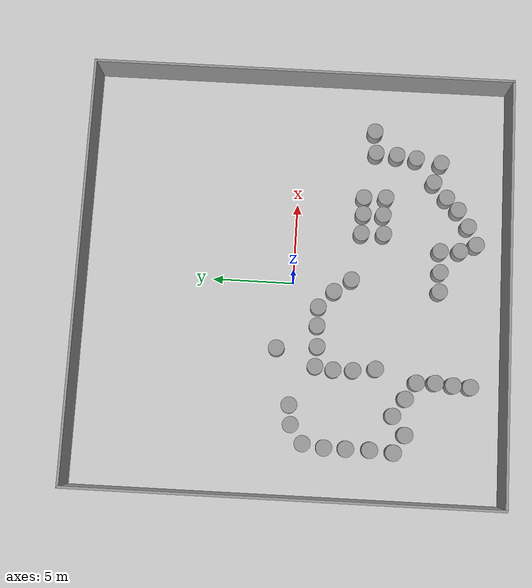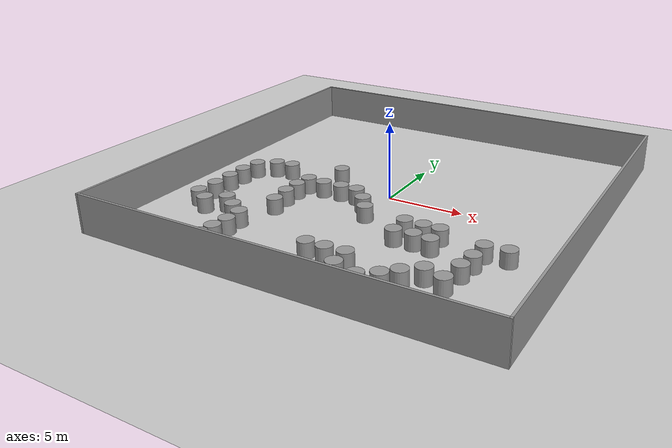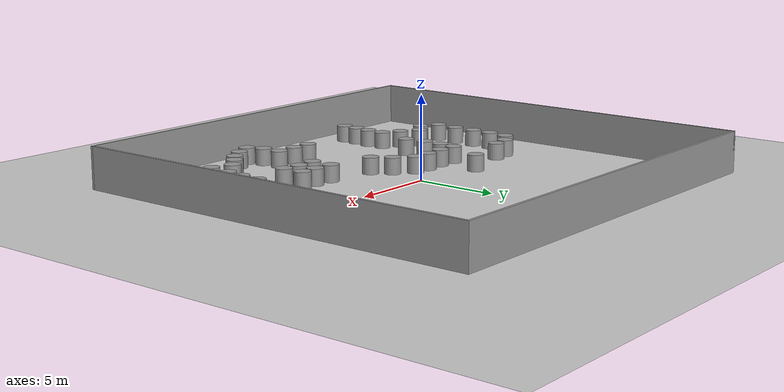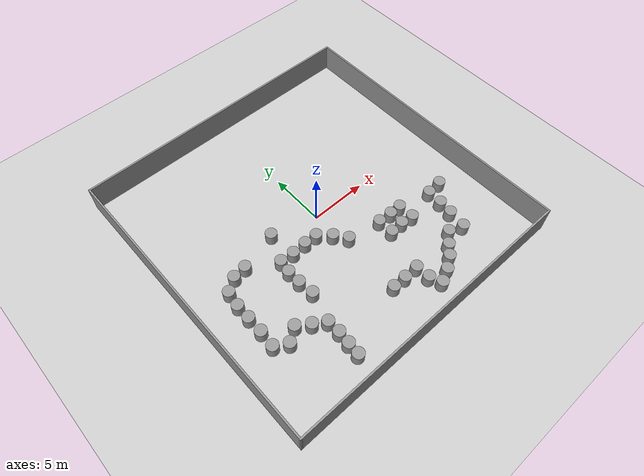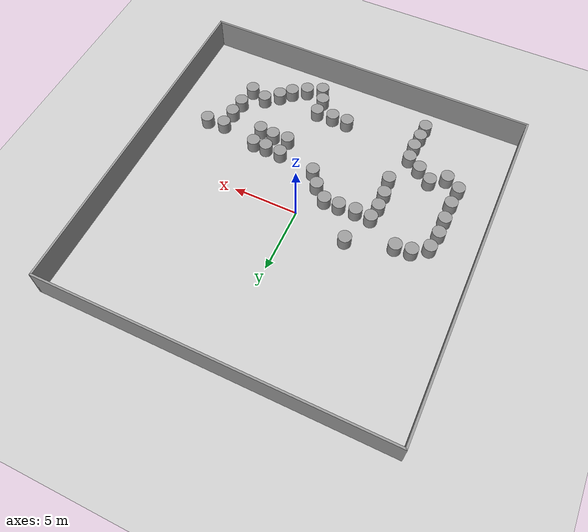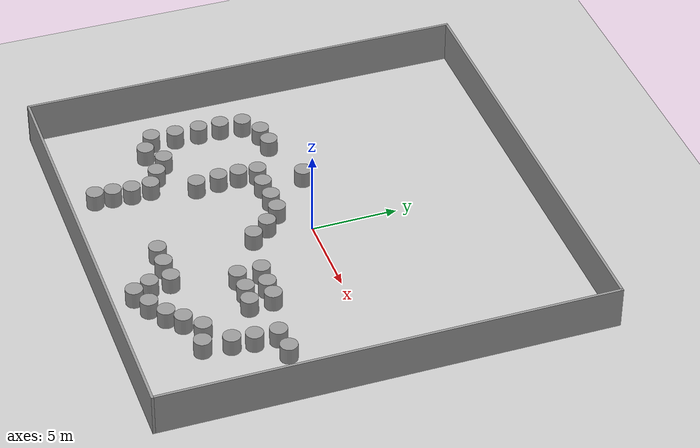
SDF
<sdf version="1.6">
 <world name="default">
  <model name="ground_plane">
   <static>1</static>
   <link name="link">
    <collision name="collision">
     <geometry><plane><normal>0 0 1</normal><size>100 100</size></plane></geometry>
     <surface><friction><ode><mu>100</mu><mu2>50</mu2></ode></friction></surface>
    </collision>
    <visual name="visual">
     <cast_shadows>0</cast_shadows>
     <geometry><plane><normal>0 0 1</normal><size>100 100</size></plane></geometry>
     <material>
      <script><uri>file://media/materials/scripts/gazebo.material</uri><name>Gazebo/Grey</name></script>
     </material>
    </visual>
   </link>
  </model>
  <model name="pp_test_2">
   <link name="Wall_0">
    <collision name="Wall_0_Collision">
     <geometry><box><size>26.15 0.15 2.5</size></box></geometry>
     <pose>0 0 1.25 0 -0 0</pose>
    </collision>
    <visual name="Wall_0_Visual">
     <pose>0 0 1.25 0 -0 0</pose>
     <geometry><box><size>26.15 0.15 2.5</size></box></geometry>
     <material>
      <script><uri>file://media/materials/scripts/gazebo.material</uri><name>Gazebo/Grey</name></script>
      <ambient>1 1 1 1</ambient>
     </material>
    </visual>
    <pose>0 13 0 0 -0 0</pose>
   </link>
   <link name="Wall_2">
    <collision name="Wall_2_Collision">
     <geometry><box><size>26.15 0.15 2.5</size></box></geometry>
     <pose>0 0 1.25 0 -0 0</pose>
    </collision>
    <visual name="Wall_2_Visual">
     <pose>0 0 1.25 0 -0 0</pose>
     <geometry><box><size>26.15 0.15 2.5</size></box></geometry>
     <material>
      <script><uri>file://media/materials/scripts/gazebo.material</uri><name>Gazebo/Grey</name></script>
      <ambient>1 1 1 1</ambient>
     </material>
    </visual>
    <pose>13 0 0 0 0 -1.5708</pose>
   </link>
   <link name="Wall_4">
    <collision name="Wall_4_Collision">
     <geometry><box><size>26.15 0.15 2.5</size></box></geometry>
     <pose>0 0 1.25 0 -0 0</pose>
    </collision>
    <visual name="Wall_4_Visual">
     <pose>0 0 1.25 0 -0 0</pose>
     <geometry><box><size>26.15 0.15 2.5</size></box></geometry>
     <material>
      <script><uri>file://media/materials/scripts/gazebo.material</uri><name>Gazebo/Grey</name></script>
      <ambient>1 1 1 1</ambient>
     </material>
    </visual>
    <pose>0 -13 0 0 -0 3.14159</pose>
   </link>
   <link name="Wall_6">
    <collision name="Wall_6_Collision">
     <geometry><box><size>26.15 0.15 2.5</size></box></geometry>
     <pose>0 0 1.25 0 -0 0</pose>
    </collision>
    <visual name="Wall_6_Visual">
     <pose>0 0 1.25 0 -0 0</pose>
     <geometry><box><size>26.15 0.15 2.5</size></box></geometry>
     <material>
      <script><uri>file://media/materials/scripts/gazebo.material</uri><name>Gazebo/Grey</name></script>
      <ambient>1 1 1 1</ambient>
     </material>
    </visual>
    <pose>-13 0 0 0 -0 1.5708</pose>
   </link>
   <static>1</static>
  </model>
  <model name="unit_cylinder_3_clone_5">
   <pose>-4.14131 0.836526 0.499996 2e-06 1e-06 0</pose>
   <link name="link">
    <inertial>
     <mass>1</mass>
     <inertia><ixx>0.145833</ixx><ixy>0</ixy><ixz>0</ixz><iyy>0.145833</iyy><iyz>0</iyz><izz>0.125</izz></inertia>
    </inertial>
    <collision name="collision">
     <geometry><cylinder><radius>0.5</radius><length>1</length></cylinder></geometry>
    </collision>
    <visual name="visual">
     <geometry><cylinder><radius>0.5</radius><length>1</length></cylinder></geometry>
     <material>
      <script><name>Gazebo/Grey</name><uri>file://media/materials/scripts/gazebo.material</uri></script>
     </material>
    </visual>
   </link>
  </model>
  <model name="unit_cylinder_3_clone_8">
   <pose>-1.49686 -1.59938 0.499994 -2e-06 -1e-06 0</pose>
   <link name="link">
    <inertial>
     <mass>1</mass>
     <inertia><ixx>0.145833</ixx><ixy>0</ixy><ixz>0</ixz><iyy>0.145833</iyy><iyz>0</iyz><izz>0.125</izz></inertia>
    </inertial>
    <collision name="collision">
     <geometry><cylinder><radius>0.5</radius><length>1</length></cylinder></geometry>
    </collision>
    <visual name="visual">
     <geometry><cylinder><radius>0.5</radius><length>1</length></cylinder></geometry>
     <material>
      <script><name>Gazebo/Grey</name><uri>file://media/materials/scripts/gazebo.material</uri></script>
     </material>
    </visual>
   </link>
  </model>
  <model name="unit_cylinder_3_clone_9">
   <pose>-2.65788 -1.58084 0.499996 2e-06 1e-06 0</pose>
   <link name="link">
    <inertial>
     <mass>1</mass>
     <inertia><ixx>0.145833</ixx><ixy>0</ixy><ixz>0</ixz><iyy>0.145833</iyy><iyz>0</iyz><izz>0.125</izz></inertia>
    </inertial>
    <collision name="collision">
     <geometry><cylinder><radius>0.5</radius><length>1</length></cylinder></geometry>
    </collision>
    <visual name="visual">
     <geometry><cylinder><radius>0.5</radius><length>1</length></cylinder></geometry>
     <material>
      <script><name>Gazebo/Grey</name><uri>file://media/materials/scripts/gazebo.material</uri></script>
     </material>
    </visual>
   </link>
  </model>
  <model name="unit_cylinder_3_clone_10">
   <pose>-3.93267 -1.65023 0.499994 -2e-06 -1e-06 0</pose>
   <link name="link">
    <inertial>
     <mass>1</mass>
     <inertia><ixx>0.145833</ixx><ixy>0</ixy><ixz>0</ixz><iyy>0.145833</iyy><iyz>0</iyz><izz>0.125</izz></inertia>
    </inertial>
    <collision name="collision">
     <geometry><cylinder><radius>0.5</radius><length>1</length></cylinder></geometry>
    </collision>
    <visual name="visual">
     <geometry><cylinder><radius>0.5</radius><length>1</length></cylinder></geometry>
     <material>
      <script><name>Gazebo/Grey</name><uri>file://media/materials/scripts/gazebo.material</uri></script>
     </material>
    </visual>
   </link>
  </model>
  <model name="unit_cylinder_3_clone_11">
   <pose>-5.14336 -1.57667 0.499996 3e-06 1e-06 -0</pose>
   <link name="link">
    <inertial>
     <mass>1</mass>
     <inertia><ixx>0.145833</ixx><ixy>0</ixy><ixz>0</ixz><iyy>0.145833</iyy><iyz>0</iyz><izz>0.125</izz></inertia>
    </inertial>
    <collision name="collision">
     <geometry><cylinder><radius>0.5</radius><length>1</length></cylinder></geometry>
    </collision>
    <visual name="visual">
     <geometry><cylinder><radius>0.5</radius><length>1</length></cylinder></geometry>
     <material>
      <script><name>Gazebo/Grey</name><uri>file://media/materials/scripts/gazebo.material</uri></script>
     </material>
    </visual>
   </link>
  </model>
  <model name="unit_cylinder_3_clone_12">
   <pose>-5.289 -2.68054 0.499994 -3e-06 -1e-06 -0</pose>
   <link name="link">
    <inertial>
     <mass>1</mass>
     <inertia><ixx>0.145833</ixx><ixy>0</ixy><ixz>0</ixz><iyy>0.145833</iyy><iyz>0</iyz><izz>0.125</izz></inertia>
    </inertial>
    <collision name="collision">
     <geometry><cylinder><radius>0.5</radius><length>1</length></cylinder></geometry>
    </collision>
    <visual name="visual">
     <geometry><cylinder><radius>0.5</radius><length>1</length></cylinder></geometry>
     <material>
      <script><name>Gazebo/Grey</name><uri>file://media/materials/scripts/gazebo.material</uri></script>
     </material>
    </visual>
   </link>
  </model>
  <model name="unit_cylinder_3_clone_13">
   <pose>-5.26765 -3.88171 0.499996 3e-06 1e-06 -0</pose>
   <link name="link">
    <inertial>
     <mass>1</mass>
     <inertia><ixx>0.145833</ixx><ixy>0</ixy><ixz>0</ixz><iyy>0.145833</iyy><iyz>0</iyz><izz>0.125</izz></inertia>
    </inertial>
    <collision name="collision">
     <geometry><cylinder><radius>0.5</radius><length>1</length></cylinder></geometry>
    </collision>
    <visual name="visual">
     <geometry><cylinder><radius>0.5</radius><length>1</length></cylinder></geometry>
     <material>
      <script><name>Gazebo/Grey</name><uri>file://media/materials/scripts/gazebo.material</uri></script>
     </material>
    </visual>
   </link>
  </model>
  <model name="unit_cylinder_3_clone_14">
   <pose>-5.10953 -5.24772 0.499994 -3e-06 -1e-06 -0</pose>
   <link name="link">
    <inertial>
     <mass>1</mass>
     <inertia><ixx>0.145833</ixx><ixy>0</ixy><ixz>0</ixz><iyy>0.145833</iyy><iyz>0</iyz><izz>0.125</izz></inertia>
    </inertial>
    <collision name="collision">
     <geometry><cylinder><radius>0.5</radius><length>1</length></cylinder></geometry>
    </collision>
    <visual name="visual">
     <geometry><cylinder><radius>0.5</radius><length>1</length></cylinder></geometry>
     <material>
      <script><name>Gazebo/Grey</name><uri>file://media/materials/scripts/gazebo.material</uri></script>
     </material>
    </visual>
   </link>
  </model>
  <model name="unit_cylinder_3_clone_15">
   <pose>-0.485963 -2.51006 0.499996 3e-06 1e-06 -0</pose>
   <link name="link">
    <inertial>
     <mass>1</mass>
     <inertia><ixx>0.145833</ixx><ixy>0</ixy><ixz>0</ixz><iyy>0.145833</iyy><iyz>0</iyz><izz>0.125</izz></inertia>
    </inertial>
    <collision name="collision">
     <geometry><cylinder><radius>0.5</radius><length>1</length></cylinder></geometry>
    </collision>
    <visual name="visual">
     <geometry><cylinder><radius>0.5</radius><length>1</length></cylinder></geometry>
     <material>
      <script><name>Gazebo/Grey</name><uri>file://media/materials/scripts/gazebo.material</uri></script>
     </material>
    </visual>
   </link>
  </model>
  <model name="unit_cylinder_3_clone_16">
   <pose>0.297227 -3.55585 0.499994 -3e-06 -1e-06 -0</pose>
   <link name="link">
    <inertial>
     <mass>1</mass>
     <inertia><ixx>0.145833</ixx><ixy>0</ixy><ixz>0</ixz><iyy>0.145833</iyy><iyz>0</iyz><izz>0.125</izz></inertia>
    </inertial>
    <collision name="collision">
     <geometry><cylinder><radius>0.5</radius><length>1</length></cylinder></geometry>
    </collision>
    <visual name="visual">
     <geometry><cylinder><radius>0.5</radius><length>1</length></cylinder></geometry>
     <material>
      <script><name>Gazebo/Grey</name><uri>file://media/materials/scripts/gazebo.material</uri></script>
     </material>
    </visual>
   </link>
  </model>
  <model name="unit_cylinder_3_clone_45">
   <pose>-9.79398 -1.03139 0.499997 3e-06 2e-06 0</pose>
   <link name="link">
    <inertial>
     <mass>1</mass>
     <inertia><ixx>0.145833</ixx><ixy>0</ixy><ixz>0</ixz><iyy>0.145833</iyy><iyz>0</iyz><izz>0.125</izz></inertia>
    </inertial>
    <collision name="collision">
     <geometry><cylinder><radius>0.5</radius><length>1</length></cylinder></geometry>
    </collision>
    <visual name="visual">
     <geometry><cylinder><radius>0.5</radius><length>1</length></cylinder></geometry>
     <material>
      <script><name>Gazebo/Grey</name><uri>file://media/materials/scripts/gazebo.material</uri></script>
     </material>
    </visual>
   </link>
  </model>
  <model name="unit_cylinder_3_clone_46">
   <pose>-8.70421 -0.26571 0.499997 3e-06 2e-06 0</pose>
   <link name="link">
    <inertial>
     <mass>1</mass>
     <inertia><ixx>0.145833</ixx><ixy>0</ixy><ixz>0</ixz><iyy>0.145833</iyy><iyz>0</iyz><izz>0.125</izz></inertia>
    </inertial>
    <collision name="collision">
     <geometry><cylinder><radius>0.5</radius><length>1</length></cylinder></geometry>
    </collision>
    <visual name="visual">
     <geometry><cylinder><radius>0.5</radius><length>1</length></cylinder></geometry>
     <material>
      <script><name>Gazebo/Grey</name><uri>file://media/materials/scripts/gazebo.material</uri></script>
     </material>
    </visual>
   </link>
  </model>
  <model name="unit_cylinder_3_clone_47">
   <pose>-7.53872 -0.117283 0.499994 -3e-06 -2e-06 0</pose>
   <link name="link">
    <inertial>
     <mass>1</mass>
     <inertia><ixx>0.145833</ixx><ixy>0</ixy><ixz>0</ixz><iyy>0.145833</iyy><iyz>0</iyz><izz>0.125</izz></inertia>
    </inertial>
    <collision name="collision">
     <geometry><cylinder><radius>0.5</radius><length>1</length></cylinder></geometry>
    </collision>
    <visual name="visual">
     <geometry><cylinder><radius>0.5</radius><length>1</length></cylinder></geometry>
     <material>
      <script><name>Gazebo/Grey</name><uri>file://media/materials/scripts/gazebo.material</uri></script>
     </material>
    </visual>
   </link>
  </model>
  <model name="unit_cylinder_3_clone_48">
   <pose>-9.97561 -2.34091 0.499997 3e-06 2e-06 0</pose>
   <link name="link">
    <inertial>
     <mass>1</mass>
     <inertia><ixx>0.145833</ixx><ixy>0</ixy><ixz>0</ixz><iyy>0.145833</iyy><iyz>0</iyz><izz>0.125</izz></inertia>
    </inertial>
    <collision name="collision">
     <geometry><cylinder><radius>0.5</radius><length>1</length></cylinder></geometry>
    </collision>
    <visual name="visual">
     <geometry><cylinder><radius>0.5</radius><length>1</length></cylinder></geometry>
     <material>
      <script><name>Gazebo/Grey</name><uri>file://media/materials/scripts/gazebo.material</uri></script>
     </material>
    </visual>
   </link>
  </model>
  <model name="unit_cylinder_3_clone_49">
   <pose>-9.97675 -3.65167 0.499997 3e-06 2e-06 0</pose>
   <link name="link">
    <inertial>
     <mass>1</mass>
     <inertia><ixx>0.145833</ixx><ixy>0</ixy><ixz>0</ixz><iyy>0.145833</iyy><iyz>0</iyz><izz>0.125</izz></inertia>
    </inertial>
    <collision name="collision">
     <geometry><cylinder><radius>0.5</radius><length>1</length></cylinder></geometry>
    </collision>
    <visual name="visual">
     <geometry><cylinder><radius>0.5</radius><length>1</length></cylinder></geometry>
     <material>
      <script><name>Gazebo/Grey</name><uri>file://media/materials/scripts/gazebo.material</uri></script>
     </material>
    </visual>
   </link>
  </model>
  <model name="unit_cylinder_3_clone_50">
   <pose>-9.96936 -5.08345 0.499994 -3e-06 -2e-06 0</pose>
   <link name="link">
    <inertial>
     <mass>1</mass>
     <inertia><ixx>0.145833</ixx><ixy>0</ixy><ixz>0</ixz><iyy>0.145833</iyy><iyz>0</iyz><izz>0.125</izz></inertia>
    </inertial>
    <collision name="collision">
     <geometry><cylinder><radius>0.5</radius><length>1</length></cylinder></geometry>
    </collision>
    <visual name="visual">
     <geometry><cylinder><radius>0.5</radius><length>1</length></cylinder></geometry>
     <material>
      <script><name>Gazebo/Grey</name><uri>file://media/materials/scripts/gazebo.material</uri></script>
     </material>
    </visual>
   </link>
  </model>
  <model name="unit_cylinder_3_clone_51">
   <pose>-10.0565 -6.51119 0.499994 -3e-06 -2e-06 0</pose>
   <link name="link">
    <inertial>
     <mass>1</mass>
     <inertia><ixx>0.145833</ixx><ixy>0</ixy><ixz>0</ixz><iyy>0.145833</iyy><iyz>0</iyz><izz>0.125</izz></inertia>
    </inertial>
    <collision name="collision">
     <geometry><cylinder><radius>0.5</radius><length>1</length></cylinder></geometry>
    </collision>
    <visual name="visual">
     <geometry><cylinder><radius>0.5</radius><length>1</length></cylinder></geometry>
     <material>
      <script><name>Gazebo/Grey</name><uri>file://media/materials/scripts/gazebo.material</uri></script>
     </material>
    </visual>
   </link>
  </model>
  <model name="unit_cylinder_3_clone_52">
   <pose>-8.98197 -7.16233 0.499994 -3e-06 -2e-06 0</pose>
   <link name="link">
    <inertial>
     <mass>1</mass>
     <inertia><ixx>0.145833</ixx><ixy>0</ixy><ixz>0</ixz><iyy>0.145833</iyy><iyz>0</iyz><izz>0.125</izz></inertia>
    </inertial>
    <collision name="collision">
     <geometry><cylinder><radius>0.5</radius><length>1</length></cylinder></geometry>
    </collision>
    <visual name="visual">
     <geometry><cylinder><radius>0.5</radius><length>1</length></cylinder></geometry>
     <material>
      <script><name>Gazebo/Grey</name><uri>file://media/materials/scripts/gazebo.material</uri></script>
     </material>
    </visual>
   </link>
  </model>
  <model name="unit_cylinder_3_clone_53">
   <pose>-7.8784 -6.38546 0.499994 -3e-06 -2e-06 0</pose>
   <link name="link">
    <inertial>
     <mass>1</mass>
     <inertia><ixx>0.145833</ixx><ixy>0</ixy><ixz>0</ixz><iyy>0.145833</iyy><iyz>0</iyz><izz>0.125</izz></inertia>
    </inertial>
    <collision name="collision">
     <geometry><cylinder><radius>0.5</radius><length>1</length></cylinder></geometry>
    </collision>
    <visual name="visual">
     <geometry><cylinder><radius>0.5</radius><length>1</length></cylinder></geometry>
     <material>
      <script><name>Gazebo/Grey</name><uri>file://media/materials/scripts/gazebo.material</uri></script>
     </material>
    </visual>
   </link>
  </model>
  <model name="unit_cylinder_3_clone_54">
   <pose>-6.82397 -7.11164 0.499991 -2e-06 -2e-06 0</pose>
   <link name="link">
    <inertial>
     <mass>1</mass>
     <inertia><ixx>0.145833</ixx><ixy>0</ixy><ixz>0</ixz><iyy>0.145833</iyy><iyz>0</iyz><izz>0.125</izz></inertia>
    </inertial>
    <collision name="collision">
     <geometry><cylinder><radius>0.5</radius><length>1</length></cylinder></geometry>
    </collision>
    <visual name="visual">
     <geometry><cylinder><radius>0.5</radius><length>1</length></cylinder></geometry>
     <material>
      <script><name>Gazebo/Grey</name><uri>file://media/materials/scripts/gazebo.material</uri></script>
     </material>
    </visual>
   </link>
  </model>
  <model name="unit_cylinder_3_clone_55">
   <pose>-5.81483 -7.75175 0.499997 4e-06 3e-06 -0</pose>
   <link name="link">
    <inertial>
     <mass>1</mass>
     <inertia><ixx>0.145833</ixx><ixy>0</ixy><ixz>0</ixz><iyy>0.145833</iyy><iyz>0</iyz><izz>0.125</izz></inertia>
    </inertial>
    <collision name="collision">
     <geometry><cylinder><radius>0.5</radius><length>1</length></cylinder></geometry>
    </collision>
    <visual name="visual">
     <geometry><cylinder><radius>0.5</radius><length>1</length></cylinder></geometry>
     <material>
      <script><name>Gazebo/Grey</name><uri>file://media/materials/scripts/gazebo.material</uri></script>
     </material>
    </visual>
   </link>
  </model>
  <model name="unit_cylinder_3_clone_56">
   <pose>-5.77116 -8.8891 0.499994 -4e-06 -4e-06 -0</pose>
   <link name="link">
    <inertial>
     <mass>1</mass>
     <inertia><ixx>0.145833</ixx><ixy>0</ixy><ixz>0</ixz><iyy>0.145833</iyy><iyz>0</iyz><izz>0.125</izz></inertia>
    </inertial>
    <collision name="collision">
     <geometry><cylinder><radius>0.5</radius><length>1</length></cylinder></geometry>
    </collision>
    <visual name="visual">
     <geometry><cylinder><radius>0.5</radius><length>1</length></cylinder></geometry>
     <material>
      <script><name>Gazebo/Grey</name><uri>file://media/materials/scripts/gazebo.material</uri></script>
     </material>
    </visual>
   </link>
  </model>
  <model name="unit_cylinder_3_clone_57">
   <pose>-5.86231 -9.9733 0.499996 2e-06 -0 0</pose>
   <link name="link">
    <inertial>
     <mass>1</mass>
     <inertia><ixx>0.145833</ixx><ixy>0</ixy><ixz>0</ixz><iyy>0.145833</iyy><iyz>0</iyz><izz>0.125</izz></inertia>
    </inertial>
    <collision name="collision">
     <geometry><cylinder><radius>0.5</radius><length>1</length></cylinder></geometry>
    </collision>
    <visual name="visual">
     <geometry><cylinder><radius>0.5</radius><length>1</length></cylinder></geometry>
     <material>
      <script><name>Gazebo/Grey</name><uri>file://media/materials/scripts/gazebo.material</uri></script>
     </material>
    </visual>
   </link>
  </model>
  <model name="unit_cylinder_3_clone_58">
   <pose>-5.9174 -11.0147 0.499998 3e-06 4e-06 -0</pose>
   <link name="link">
    <inertial>
     <mass>1</mass>
     <inertia><ixx>0.145833</ixx><ixy>0</ixy><ixz>0</ixz><iyy>0.145833</iyy><iyz>0</iyz><izz>0.125</izz></inertia>
    </inertial>
    <collision name="collision">
     <geometry><cylinder><radius>0.5</radius><length>1</length></cylinder></geometry>
    </collision>
    <visual name="visual">
     <geometry><cylinder><radius>0.5</radius><length>1</length></cylinder></geometry>
     <material>
      <script><name>Gazebo/Grey</name><uri>file://media/materials/scripts/gazebo.material</uri></script>
     </material>
    </visual>
   </link>
  </model>
  <model name="unit_cylinder_3_clone_66">
   <pose>3.24314 -4.04102 0.499992 -3e-06 2e-06 0</pose>
   <link name="link">
    <inertial>
     <mass>1</mass>
     <inertia><ixx>0.145833</ixx><ixy>0</ixy><ixz>0</ixz><iyy>0.145833</iyy><iyz>0</iyz><izz>0.125</izz></inertia>
    </inertial>
    <collision name="collision">
     <geometry><cylinder><radius>0.5</radius><length>1</length></cylinder></geometry>
    </collision>
    <visual name="visual">
     <geometry><cylinder><radius>0.5</radius><length>1</length></cylinder></geometry>
     <material>
      <script><name>Gazebo/Grey</name><uri>file://media/materials/scripts/gazebo.material</uri></script>
     </material>
    </visual>
   </link>
  </model>
  <model name="unit_cylinder_3_clone_67">
   <pose>4.47563 -4.10887 0.499998 3e-06 -2e-06 0</pose>
   <link name="link">
    <inertial>
     <mass>1</mass>
     <inertia><ixx>0.145833</ixx><ixy>0</ixy><ixz>0</ixz><iyy>0.145833</iyy><iyz>0</iyz><izz>0.125</izz></inertia>
    </inertial>
    <collision name="collision">
     <geometry><cylinder><radius>0.5</radius><length>1</length></cylinder></geometry>
    </collision>
    <visual name="visual">
     <geometry><cylinder><radius>0.5</radius><length>1</length></cylinder></geometry>
     <material>
      <script><name>Gazebo/Grey</name><uri>file://media/materials/scripts/gazebo.material</uri></script>
     </material>
    </visual>
   </link>
  </model>
  <model name="unit_cylinder_3_clone_68">
   <pose>5.52633 -4.1085 0.499993 -3e-06 2e-06 0</pose>
   <link name="link">
    <inertial>
     <mass>1</mass>
     <inertia><ixx>0.145833</ixx><ixy>0</ixy><ixz>0</ixz><iyy>0.145833</iyy><iyz>0</iyz><izz>0.125</izz></inertia>
    </inertial>
    <collision name="collision">
     <geometry><cylinder><radius>0.5</radius><length>1</length></cylinder></geometry>
    </collision>
    <visual name="visual">
     <geometry><cylinder><radius>0.5</radius><length>1</length></cylinder></geometry>
     <material>
      <script><name>Gazebo/Grey</name><uri>file://media/materials/scripts/gazebo.material</uri></script>
     </material>
    </visual>
   </link>
  </model>
  <model name="unit_cylinder_3_clone_69">
   <pose>5.59586 -5.47862 0.499998 3e-06 -2e-06 0</pose>
   <link name="link">
    <inertial>
     <mass>1</mass>
     <inertia><ixx>0.145833</ixx><ixy>0</ixy><ixz>0</ixz><iyy>0.145833</iyy><iyz>0</iyz><izz>0.125</izz></inertia>
    </inertial>
    <collision name="collision">
     <geometry><cylinder><radius>0.5</radius><length>1</length></cylinder></geometry>
    </collision>
    <visual name="visual">
     <geometry><cylinder><radius>0.5</radius><length>1</length></cylinder></geometry>
     <material>
      <script><name>Gazebo/Grey</name><uri>file://media/materials/scripts/gazebo.material</uri></script>
     </material>
    </visual>
   </link>
  </model>
  <model name="unit_cylinder_3_clone_70">
   <pose>4.48494 -5.35415 0.499998 3e-06 -2e-06 0</pose>
   <link name="link">
    <inertial>
     <mass>1</mass>
     <inertia><ixx>0.145833</ixx><ixy>0</ixy><ixz>0</ixz><iyy>0.145833</iyy><iyz>0</iyz><izz>0.125</izz></inertia>
    </inertial>
    <collision name="collision">
     <geometry><cylinder><radius>0.5</radius><length>1</length></cylinder></geometry>
    </collision>
    <visual name="visual">
     <geometry><cylinder><radius>0.5</radius><length>1</length></cylinder></geometry>
     <material>
      <script><name>Gazebo/Grey</name><uri>file://media/materials/scripts/gazebo.material</uri></script>
     </material>
    </visual>
   </link>
  </model>
  <model name="unit_cylinder_3_clone_71">
   <pose>3.2732 -5.42641 0.499998 3e-06 -2e-06 0</pose>
   <link name="link">
    <inertial>
     <mass>1</mass>
     <inertia><ixx>0.145833</ixx><ixy>0</ixy><ixz>0</ixz><iyy>0.145833</iyy><iyz>0</iyz><izz>0.125</izz></inertia>
    </inertial>
    <collision name="collision">
     <geometry><cylinder><radius>0.5</radius><length>1</length></cylinder></geometry>
    </collision>
    <visual name="visual">
     <geometry><cylinder><radius>0.5</radius><length>1</length></cylinder></geometry>
     <material>
      <script><name>Gazebo/Grey</name><uri>file://media/materials/scripts/gazebo.material</uri></script>
     </material>
    </visual>
   </link>
  </model>
  <model name="unit_cylinder_3_clone_72">
   <pose>-0.172919 -8.97808 0.499998 3e-06 -2e-06 0</pose>
   <link name="link">
    <inertial>
     <mass>1</mass>
     <inertia><ixx>0.145833</ixx><ixy>0</ixy><ixz>0</ixz><iyy>0.145833</iyy><iyz>0</iyz><izz>0.125</izz></inertia>
    </inertial>
    <collision name="collision">
     <geometry><cylinder><radius>0.5</radius><length>1</length></cylinder></geometry>
    </collision>
    <visual name="visual">
     <geometry><cylinder><radius>0.5</radius><length>1</length></cylinder></geometry>
     <material>
      <script><name>Gazebo/Grey</name><uri>file://media/materials/scripts/gazebo.material</uri></script>
     </material>
    </visual>
   </link>
  </model>
  <model name="unit_cylinder_3_clone_73">
   <pose>1.04324 -8.98863 0.499998 3e-06 -3e-06 0</pose>
   <link name="link">
    <inertial>
     <mass>1</mass>
     <inertia><ixx>0.145833</ixx><ixy>0</ixy><ixz>0</ixz><iyy>0.145833</iyy><iyz>0</iyz><izz>0.125</izz></inertia>
    </inertial>
    <collision name="collision">
     <geometry><cylinder><radius>0.5</radius><length>1</length></cylinder></geometry>
    </collision>
    <visual name="visual">
     <geometry><cylinder><radius>0.5</radius><length>1</length></cylinder></geometry>
     <material>
      <script><name>Gazebo/Grey</name><uri>file://media/materials/scripts/gazebo.material</uri></script>
     </material>
    </visual>
   </link>
  </model>
  <model name="unit_cylinder_3_clone_74">
   <pose>2.35487 -8.95762 0.499998 3e-06 -3e-06 0</pose>
   <link name="link">
    <inertial>
     <mass>1</mass>
     <inertia><ixx>0.145833</ixx><ixy>0</ixy><ixz>0</ixz><iyy>0.145833</iyy><iyz>0</iyz><izz>0.125</izz></inertia>
    </inertial>
    <collision name="collision">
     <geometry><cylinder><radius>0.5</radius><length>1</length></cylinder></geometry>
    </collision>
    <visual name="visual">
     <geometry><cylinder><radius>0.5</radius><length>1</length></cylinder></geometry>
     <material>
      <script><name>Gazebo/Grey</name><uri>file://media/materials/scripts/gazebo.material</uri></script>
     </material>
    </visual>
   </link>
  </model>
  <model name="unit_cylinder_3_clone_75">
   <pose>2.43167 -10.1809 0.499998 3e-06 -3e-06 0</pose>
   <link name="link">
    <inertial>
     <mass>1</mass>
     <inertia><ixx>0.145833</ixx><ixy>0</ixy><ixz>0</ixz><iyy>0.145833</iyy><iyz>0</iyz><izz>0.125</izz></inertia>
    </inertial>
    <collision name="collision">
     <geometry><cylinder><radius>0.5</radius><length>1</length></cylinder></geometry>
    </collision>
    <visual name="visual">
     <geometry><cylinder><radius>0.5</radius><length>1</length></cylinder></geometry>
     <material>
      <script><name>Gazebo/Grey</name><uri>file://media/materials/scripts/gazebo.material</uri></script>
     </material>
    </visual>
   </link>
  </model>
  <model name="unit_cylinder_3_clone_76">
   <pose>2.87287 -11.1743 0.499992 -3e-06 3e-06 0</pose>
   <link name="link">
    <inertial>
     <mass>1</mass>
     <inertia><ixx>0.145833</ixx><ixy>0</ixy><ixz>0</ixz><iyy>0.145833</iyy><iyz>0</iyz><izz>0.125</izz></inertia>
    </inertial>
    <collision name="collision">
     <geometry><cylinder><radius>0.5</radius><length>1</length></cylinder></geometry>
    </collision>
    <visual name="visual">
     <geometry><cylinder><radius>0.5</radius><length>1</length></cylinder></geometry>
     <material>
      <script><name>Gazebo/Grey</name><uri>file://media/materials/scripts/gazebo.material</uri></script>
     </material>
    </visual>
   </link>
  </model>
  <model name="unit_cylinder_3_clone_77">
   <pose>4.00007 -10.6607 0.499998 3e-06 -4e-06 0</pose>
   <link name="link">
    <inertial>
     <mass>1</mass>
     <inertia><ixx>0.145833</ixx><ixy>0</ixy><ixz>0</ixz><iyy>0.145833</iyy><iyz>0</iyz><izz>0.125</izz></inertia>
    </inertial>
    <collision name="collision">
     <geometry><cylinder><radius>0.5</radius><length>1</length></cylinder></geometry>
    </collision>
    <visual name="visual">
     <geometry><cylinder><radius>0.5</radius><length>1</length></cylinder></geometry>
     <material>
      <script><name>Gazebo/Grey</name><uri>file://media/materials/scripts/gazebo.material</uri></script>
     </material>
    </visual>
   </link>
  </model>
  <model name="unit_cylinder_3_clone_78">
   <pose>5.02692 -10.0005 0.499992 -3e-06 4e-06 0</pose>
   <link name="link">
    <inertial>
     <mass>1</mass>
     <inertia><ixx>0.145833</ixx><ixy>0</ixy><ixz>0</ixz><iyy>0.145833</iyy><iyz>0</iyz><izz>0.125</izz></inertia>
    </inertial>
    <collision name="collision">
     <geometry><cylinder><radius>0.5</radius><length>1</length></cylinder></geometry>
    </collision>
    <visual name="visual">
     <geometry><cylinder><radius>0.5</radius><length>1</length></cylinder></geometry>
     <material>
      <script><name>Gazebo/Grey</name><uri>file://media/materials/scripts/gazebo.material</uri></script>
     </material>
    </visual>
   </link>
  </model>
  <model name="unit_cylinder_3_clone_79">
   <pose>5.7768 -9.25941 0.499998 3e-06 -4e-06 0</pose>
   <link name="link">
    <inertial>
     <mass>1</mass>
     <inertia><ixx>0.145833</ixx><ixy>0</ixy><ixz>0</ixz><iyy>0.145833</iyy><iyz>0</iyz><izz>0.125</izz></inertia>
    </inertial>
    <collision name="collision">
     <geometry><cylinder><radius>0.5</radius><length>1</length></cylinder></geometry>
    </collision>
    <visual name="visual">
     <geometry><cylinder><radius>0.5</radius><length>1</length></cylinder></geometry>
     <material>
      <script><name>Gazebo/Grey</name><uri>file://media/materials/scripts/gazebo.material</uri></script>
     </material>
    </visual>
   </link>
  </model>
  <model name="unit_cylinder_3_clone_80">
   <pose>6.72587 -8.44271 0.499992 -3e-06 4e-06 0</pose>
   <link name="link">
    <inertial>
     <mass>1</mass>
     <inertia><ixx>0.145833</ixx><ixy>0</ixy><ixz>0</ixz><iyy>0.145833</iyy><iyz>0</iyz><izz>0.125</izz></inertia>
    </inertial>
    <collision name="collision">
     <geometry><cylinder><radius>0.5</radius><length>1</length></cylinder></geometry>
    </collision>
    <visual name="visual">
     <geometry><cylinder><radius>0.5</radius><length>1</length></cylinder></geometry>
     <material>
      <script><name>Gazebo/Grey</name><uri>file://media/materials/scripts/gazebo.material</uri></script>
     </material>
    </visual>
   </link>
  </model>
  <model name="unit_cylinder_3_clone_81">
   <pose>7.99841 -8.85537 0.499992 -3e-06 -4e-06 -0</pose>
   <link name="link">
    <inertial>
     <mass>1</mass>
     <inertia><ixx>0.145833</ixx><ixy>0</ixy><ixz>0</ixz><iyy>0.145833</iyy><iyz>0</iyz><izz>0.125</izz></inertia>
    </inertial>
    <collision name="collision">
     <geometry><cylinder><radius>0.5</radius><length>1</length></cylinder></geometry>
    </collision>
    <visual name="visual">
     <geometry><cylinder><radius>0.5</radius><length>1</length></cylinder></geometry>
     <material>
      <script><name>Gazebo/Grey</name><uri>file://media/materials/scripts/gazebo.material</uri></script>
     </material>
    </visual>
   </link>
  </model>
  <model name="unit_cylinder_3_clone_82">
   <pose>8.21676 -7.29953 0.499993 -3e-06 -3e-06 0</pose>
   <link name="link">
    <inertial>
     <mass>1</mass>
     <inertia><ixx>0.145833</ixx><ixy>0</ixy><ixz>0</ixz><iyy>0.145833</iyy><iyz>0</iyz><izz>0.125</izz></inertia>
    </inertial>
    <collision name="collision">
     <geometry><cylinder><radius>0.5</radius><length>1</length></cylinder></geometry>
    </collision>
    <visual name="visual">
     <geometry><cylinder><radius>0.5</radius><length>1</length></cylinder></geometry>
     <material>
      <script><name>Gazebo/Grey</name><uri>file://media/materials/scripts/gazebo.material</uri></script>
     </material>
    </visual>
   </link>
  </model>
  <model name="unit_cylinder_3_clone_83">
   <pose>8.36959 -6.0781 0.499993 -3e-06 -4e-06 -0</pose>
   <link name="link">
    <inertial>
     <mass>1</mass>
     <inertia><ixx>0.145833</ixx><ixy>0</ixy><ixz>0</ixz><iyy>0.145833</iyy><iyz>0</iyz><izz>0.125</izz></inertia>
    </inertial>
    <collision name="collision">
     <geometry><cylinder><radius>0.5</radius><length>1</length></cylinder></geometry>
    </collision>
    <visual name="visual">
     <geometry><cylinder><radius>0.5</radius><length>1</length></cylinder></geometry>
     <material>
      <script><name>Gazebo/Grey</name><uri>file://media/materials/scripts/gazebo.material</uri></script>
     </material>
    </visual>
   </link>
  </model>
  <model name="unit_cylinder_3_clone_84">
   <pose>8.44385 -4.75773 0.499993 -3e-06 -4e-06 -0</pose>
   <link name="link">
    <inertial>
     <mass>1</mass>
     <inertia><ixx>0.145833</ixx><ixy>0</ixy><ixz>0</ixz><iyy>0.145833</iyy><iyz>0</iyz><izz>0.125</izz></inertia>
    </inertial>
    <collision name="collision">
     <geometry><cylinder><radius>0.5</radius><length>1</length></cylinder></geometry>
    </collision>
    <visual name="visual">
     <geometry><cylinder><radius>0.5</radius><length>1</length></cylinder></geometry>
     <material>
      <script><name>Gazebo/Grey</name><uri>file://media/materials/scripts/gazebo.material</uri></script>
     </material>
    </visual>
   </link>
  </model>
  <model name="unit_cylinder_3_clone_85">
   <pose>9.83088 -4.64098 0.499997 3e-06 4e-06 -0</pose>
   <link name="link">
    <inertial>
     <mass>1</mass>
     <inertia><ixx>0.145833</ixx><ixy>0</ixy><ixz>0</ixz><iyy>0.145833</iyy><iyz>0</iyz><izz>0.125</izz></inertia>
    </inertial>
    <collision name="collision">
     <geometry><cylinder><radius>0.5</radius><length>1</length></cylinder></geometry>
    </collision>
    <visual name="visual">
     <geometry><cylinder><radius>0.5</radius><length>1</length></cylinder></geometry>
     <material>
      <script><name>Gazebo/Grey</name><uri>file://media/materials/scripts/gazebo.material</uri></script>
     </material>
    </visual>
   </link>
  </model>
 </world>
</sdf>
